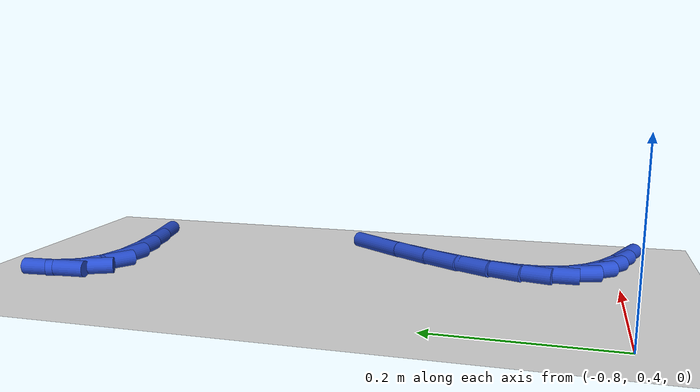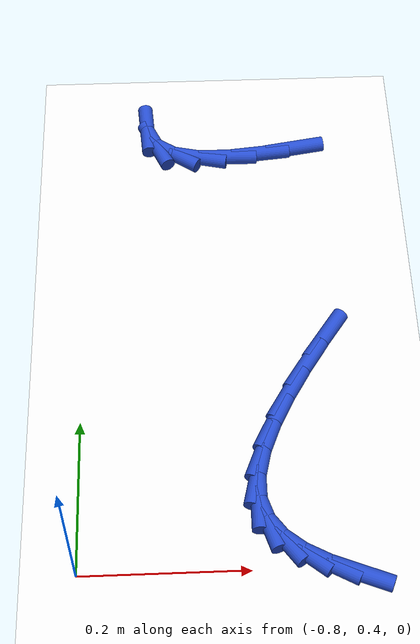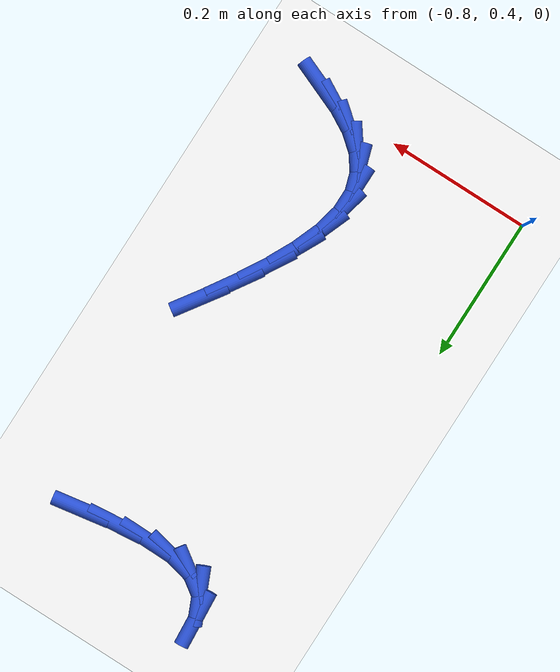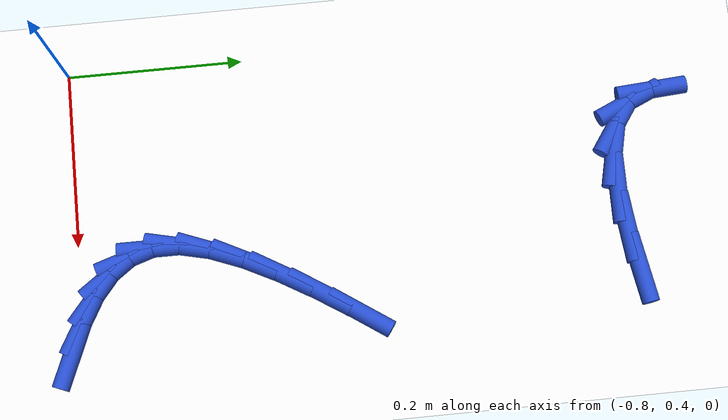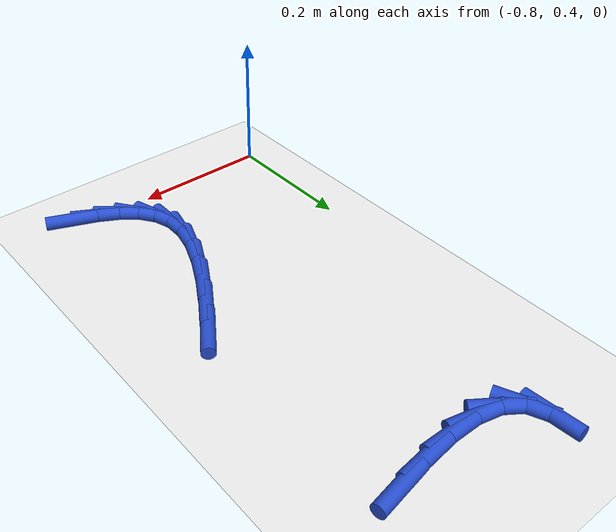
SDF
<sdf version="1.6">
 <world name="default">
  <model name="ground_plane">
   <static>1</static>
   <link name="link">
    <collision name="collision">
     <geometry><plane><normal>0 0 1</normal><size>100 100</size></plane></geometry>
     <surface><friction><ode><mu>100</mu><mu2>50</mu2></ode></friction></surface>
    </collision>
    <visual name="visual">
     <cast_shadows>0</cast_shadows>
     <geometry><plane><normal>0 0 1</normal><size>100 100</size></plane></geometry>
     <material>
      <script><uri>file://media/materials/scripts/gazebo.material</uri><name>Gazebo/WhiteGlow</name></script>
     </material>
    </visual>
   </link>
  </model>
  <model name="line">
   <link name="link_18">
    <pose>-0.4795047368901383 0.38860766461366353 0.01 0 1.57 -0.38515014080374577</pose>
    <collision name="collision">
     <geometry><cylinder><radius>0.01</radius><length>0.08</length></cylinder></geometry>
    </collision>
    <visual name="visual">
     <material>
      <script><name>Gazebo/Blue</name><uri>file://media/materials/scripts/gazebo.material</uri></script>
     </material>
     <geometry><cylinder><radius>0.01</radius><length>0.08</length></cylinder></geometry>
    </visual>
   </link>
   <link name="link_19">
    <pose>-0.5130786322480223 0.4022184153395184 0.01 0 1.57 -0.5068661121782086</pose>
    <collision name="collision">
     <geometry><cylinder><radius>0.01</radius><length>0.08</length></cylinder></geometry>
    </collision>
    <visual name="visual">
     <material>
      <script><name>Gazebo/Blue</name><uri>file://media/materials/scripts/gazebo.material</uri></script>
     </material>
     <geometry><cylinder><radius>0.01</radius><length>0.08</length></cylinder></geometry>
    </visual>
   </link>
   <link name="link_20">
    <pose>-0.5417099669783503 0.41811600622563616 0.01 0 1.57 -0.6874381057878393</pose>
    <collision name="collision">
     <geometry><cylinder><radius>0.01</radius><length>0.08</length></cylinder></geometry>
    </collision>
    <visual name="visual">
     <material>
      <script><name>Gazebo/Blue</name><uri>file://media/materials/scripts/gazebo.material</uri></script>
     </material>
     <geometry><cylinder><radius>0.01</radius><length>0.08</length></cylinder></geometry>
    </visual>
   </link>
   <link name="link_21">
    <pose>-0.5644821512858277 0.4368128389611829 0.01 0 1.57 -0.942288976830299</pose>
    <collision name="collision">
     <geometry><cylinder><radius>0.01</radius><length>0.08</length></cylinder></geometry>
    </collision>
    <visual name="visual">
     <material>
      <script><name>Gazebo/Blue</name><uri>file://media/materials/scripts/gazebo.material</uri></script>
     </material>
     <geometry><cylinder><radius>0.01</radius><length>0.08</length></cylinder></geometry>
    </visual>
   </link>
   <link name="link_22">
    <pose>-0.5804785953751608 0.45882131523532554 0.01 0 1.57 -1.2597698516216533</pose>
    <collision name="collision">
     <geometry><cylinder><radius>0.01</radius><length>0.08</length></cylinder></geometry>
    </collision>
    <visual name="visual">
     <material>
      <script><name>Gazebo/Blue</name><uri>file://media/materials/scripts/gazebo.material</uri></script>
     </material>
     <geometry><cylinder><radius>0.01</radius><length>0.08</length></cylinder></geometry>
    </visual>
   </link>
   <link name="link_23">
    <pose>-0.5887827094510554 0.4846538367372305 0.01 0 1.57 1.5678243590251086</pose>
    <collision name="collision">
     <geometry><cylinder><radius>0.01</radius><length>0.08</length></cylinder></geometry>
    </collision>
    <visual name="visual">
     <material>
      <script><name>Gazebo/Blue</name><uri>file://media/materials/scripts/gazebo.material</uri></script>
     </material>
     <geometry><cylinder><radius>0.01</radius><length>0.08</length></cylinder></geometry>
    </visual>
   </link>
   <link name="link_24">
    <pose>-0.5886934171412831 0.5146985928700692 0.01 0 1.57 1.3432820804817847</pose>
    <collision name="collision">
     <geometry><cylinder><radius>0.01</radius><length>0.08</length></cylinder></geometry>
    </collision>
    <visual name="visual">
     <material>
      <script><name>Gazebo/Blue</name><uri>file://media/materials/scripts/gazebo.material</uri></script>
     </material>
     <geometry><cylinder><radius>0.01</radius><length>0.08</length></cylinder></geometry>
    </visual>
   </link>
   <link name="link_25">
    <pose>-0.5808512956897186 0.5485705039742337 0.01 0 1.57 1.1988853763341873</pose>
    <collision name="collision">
     <geometry><cylinder><radius>0.01</radius><length>0.08</length></cylinder></geometry>
    </collision>
    <visual name="visual">
     <material>
      <script><name>Gazebo/Blue</name><uri>file://media/materials/scripts/gazebo.material</uri></script>
     </material>
     <geometry><cylinder><radius>0.01</radius><length>0.08</length></cylinder></geometry>
    </visual>
   </link>
   <link name="link_26">
    <pose>-0.5664123599053182 0.5855874152597788 0.01 0 1.57 1.1043340571011162</pose>
    <collision name="collision">
     <geometry><cylinder><radius>0.01</radius><length>0.08</length></cylinder></geometry>
    </collision>
    <visual name="visual">
     <material>
      <script><name>Gazebo/Blue</name><uri>file://media/materials/scripts/gazebo.material</uri></script>
     </material>
     <geometry><cylinder><radius>0.01</radius><length>0.08</length></cylinder></geometry>
    </visual>
   </link>
   <link name="link_27">
    <pose>-0.5465336927912743 0.6250665562774373 0.01 0 1.57 1.041027317721969</pose>
    <collision name="collision">
     <geometry><cylinder><radius>0.01</radius><length>0.08</length></cylinder></geometry>
    </collision>
    <visual name="visual">
     <material>
      <script><name>Gazebo/Blue</name><uri>file://media/materials/scripts/gazebo.material</uri></script>
     </material>
     <geometry><cylinder><radius>0.01</radius><length>0.08</length></cylinder></geometry>
    </visual>
   </link>
   <link name="link_28">
    <pose>-0.522372377350779 0.6663251565779423 0.01 0 1.57 0.9984824920722688</pose>
    <collision name="collision">
     <geometry><cylinder><radius>0.01</radius><length>0.08</length></cylinder></geometry>
    </collision>
    <visual name="visual">
     <material>
      <script><name>Gazebo/Blue</name><uri>file://media/materials/scripts/gazebo.material</uri></script>
     </material>
     <geometry><cylinder><radius>0.01</radius><length>0.08</length></cylinder></geometry>
    </visual>
   </link>
   <link name="link_29">
    <pose>-0.49508549658702483 0.708680445712026 0.01 0 1.57 0.9708700088170761</pose>
    <collision name="collision">
     <geometry><cylinder><radius>0.01</radius><length>0.08</length></cylinder></geometry>
    </collision>
    <visual name="visual">
     <material>
      <script><name>Gazebo/Blue</name><uri>file://media/materials/scripts/gazebo.material</uri></script>
     </material>
     <geometry><cylinder><radius>0.01</radius><length>0.08</length></cylinder></geometry>
    </visual>
   </link>
   <link name="link_45">
    <pose>-0.5140689900738379 1.0244097535959797 0.01 0 1.57 0.16803440817700285</pose>
    <collision name="collision">
     <geometry><cylinder><radius>0.01</radius><length>0.08</length></cylinder></geometry>
    </collision>
    <visual name="visual">
     <material>
      <script><name>Gazebo/Blue</name><uri>file://media/materials/scripts/gazebo.material</uri></script>
     </material>
     <geometry><cylinder><radius>0.01</radius><length>0.08</length></cylinder></geometry>
    </visual>
   </link>
   <link name="link_46">
    <pose>-0.5618956269849832 1.0162967302526178 0.01 0 1.57 0.10309431062793215</pose>
    <collision name="collision">
     <geometry><cylinder><radius>0.01</radius><length>0.08</length></cylinder></geometry>
    </collision>
    <visual name="visual">
     <material>
      <script><name>Gazebo/Blue</name><uri>file://media/materials/scripts/gazebo.material</uri></script>
     </material>
     <geometry><cylinder><radius>0.01</radius><length>0.08</length></cylinder></geometry>
    </visual>
   </link>
   <link name="link_47">
    <pose>-0.6072583527840224 1.011603452111168 0.01 0 1.57 -0.014087834031935654</pose>
    <collision name="collision">
     <geometry><cylinder><radius>0.01</radius><length>0.08</length></cylinder></geometry>
    </collision>
    <visual name="visual">
     <material>
      <script><name>Gazebo/Blue</name><uri>file://media/materials/scripts/gazebo.material</uri></script>
     </material>
     <geometry><cylinder><radius>0.01</radius><length>0.08</length></cylinder></geometry>
    </visual>
   </link>
   <link name="link_48">
    <pose>-0.6478258182543162 1.0121749976432988 0.01 0 1.57 -0.22578580161414125</pose>
    <collision name="collision">
     <geometry><cylinder><radius>0.01</radius><length>0.08</length></cylinder></geometry>
    </collision>
    <visual name="visual">
     <material>
      <script><name>Gazebo/Blue</name><uri>file://media/materials/scripts/gazebo.material</uri></script>
     </material>
     <geometry><cylinder><radius>0.01</radius><length>0.08</length></cylinder></geometry>
    </visual>
   </link>
   <link name="link_49">
    <pose>-0.6812666741792269 1.0198564453206793 0.01 0 1.57 -0.60647096507086</pose>
    <collision name="collision">
     <geometry><cylinder><radius>0.01</radius><length>0.08</length></cylinder></geometry>
    </collision>
    <visual name="visual">
     <material>
      <script><name>Gazebo/Blue</name><uri>file://media/materials/scripts/gazebo.material</uri></script>
     </material>
     <geometry><cylinder><radius>0.01</radius><length>0.08</length></cylinder></geometry>
    </visual>
   </link>
   <link name="link_50">
    <pose>-0.705249571342117 1.0364928736149794 0.01 0 1.57 -1.152584315193605</pose>
    <collision name="collision">
     <geometry><cylinder><radius>0.01</radius><length>0.08</length></cylinder></geometry>
    </collision>
    <visual name="visual">
     <material>
      <script><name>Gazebo/Blue</name><uri>file://media/materials/scripts/gazebo.material</uri></script>
     </material>
     <geometry><cylinder><radius>0.01</radius><length>0.08</length></cylinder></geometry>
    </visual>
   </link>
   <link name="link_51">
    <pose>-0.7174431608896911 1.0639293607119844 0.01 0 1.57 -1.4970216193585513</pose>
    <collision name="collision">
     <geometry><cylinder><radius>0.01</radius><length>0.08</length></cylinder></geometry>
    </collision>
    <visual name="visual">
     <material>
      <script><name>Gazebo/Blue</name><uri>file://media/materials/scripts/gazebo.material</uri></script>
     </material>
     <geometry><cylinder><radius>0.01</radius><length>0.08</length></cylinder></geometry>
    </visual>
   </link>
  </model>
 </world>
</sdf>
